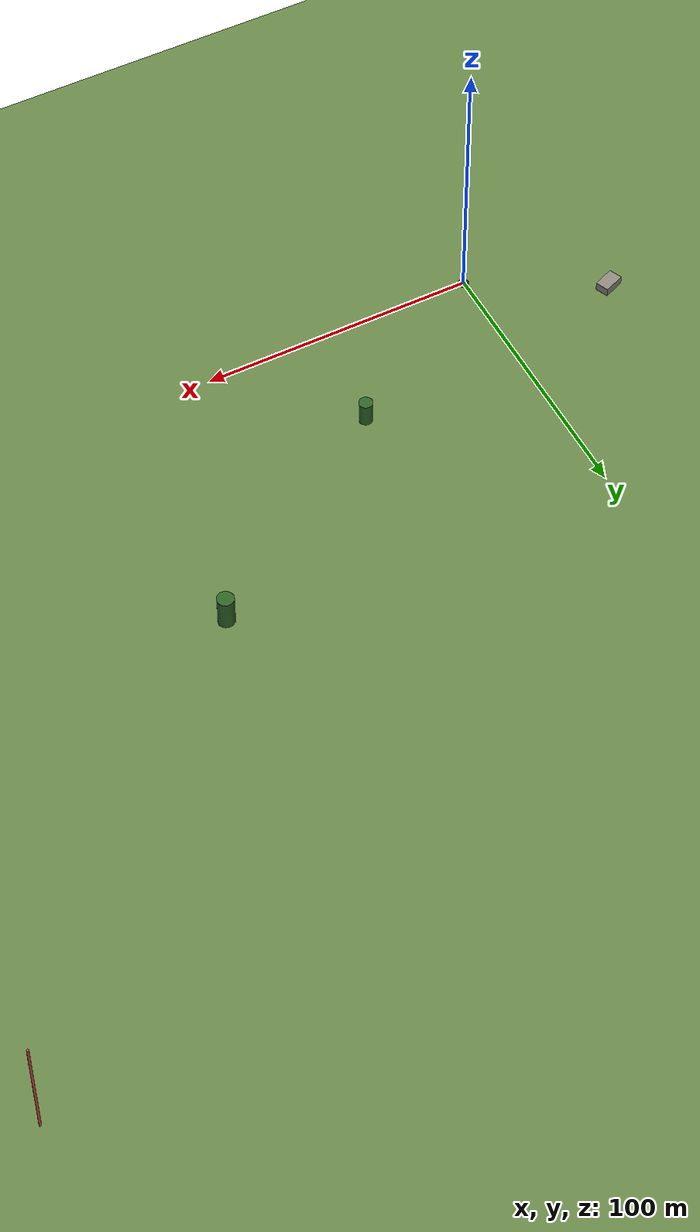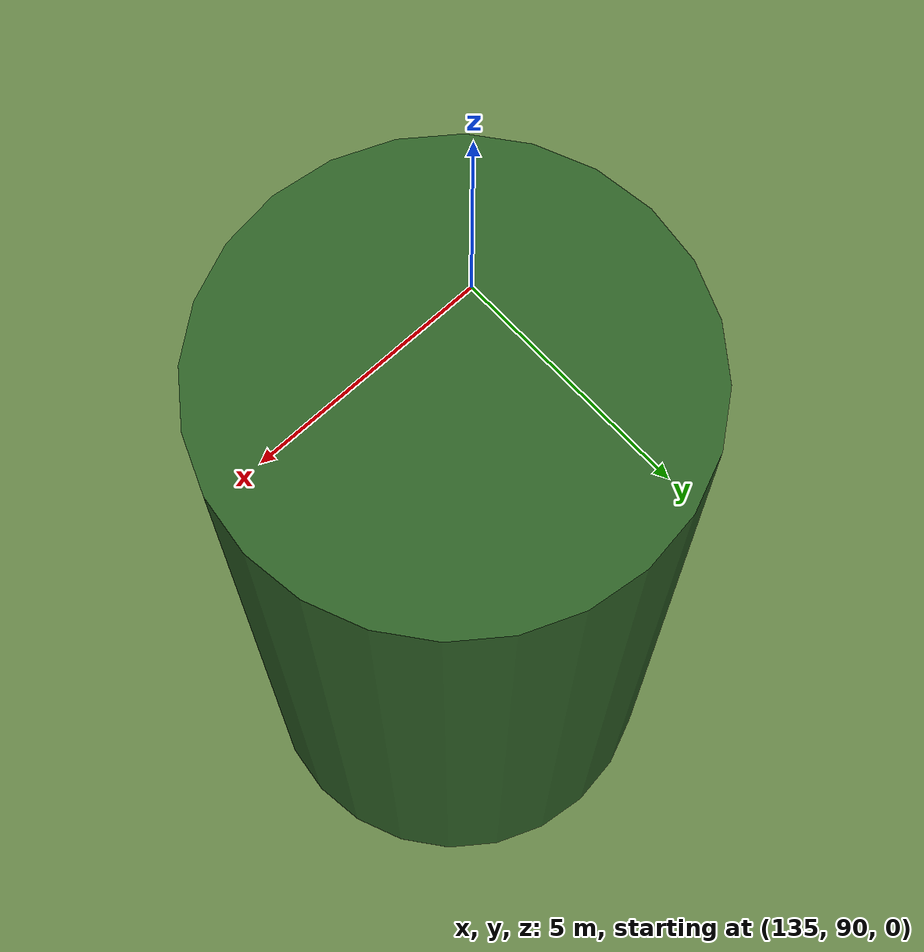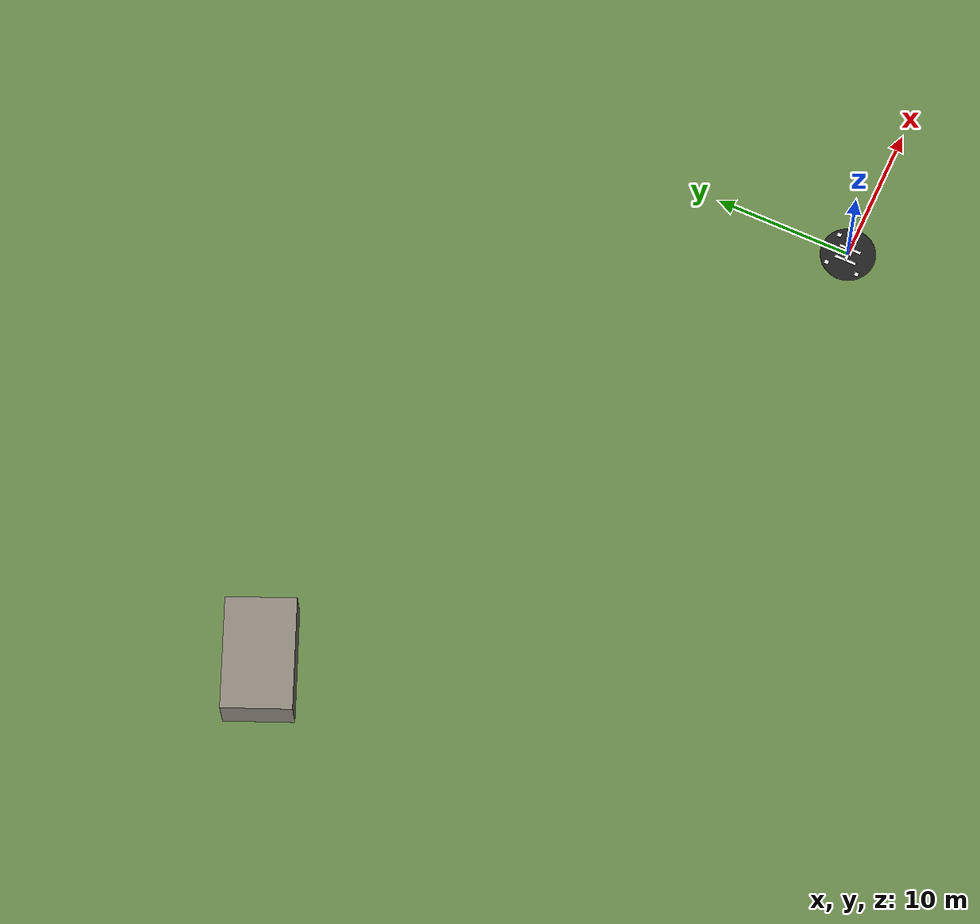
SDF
<?xml version="1.0" ?>
<sdf version="1.9">
  <world name="survey_field">

    <physics name="1ms" type="ignored">
      <max_step_size>0.001</max_step_size>
      <real_time_factor>1.0</real_time_factor>
    </physics>

    <plugin filename="gz-sim-physics-system" name="gz::sim::systems::Physics"/>
    <plugin filename="gz-sim-user-commands-system" name="gz::sim::systems::UserCommands"/>
    <plugin filename="gz-sim-scene-broadcaster-system" name="gz::sim::systems::SceneBroadcaster"/>
    <plugin filename="gz-sim-sensors-system" name="gz::sim::systems::Sensors">
      <render_engine>ogre2</render_engine>
    </plugin>
    <plugin filename="gz-sim-imu-system" name="gz::sim::systems::Imu"/>
    <plugin filename="gz-sim-air-pressure-system" name="gz::sim::systems::AirPressure"/>
    <plugin filename="gz-sim-navsat-system" name="gz::sim::systems::NavSat"/>

    <!-- Must match config/example_mission.yaml and config/example_geofence.yaml. -->
    <spherical_coordinates>
      <surface_model>EARTH_WGS84</surface_model>
      <world_frame_orientation>ENU</world_frame_orientation>
      <latitude_deg>47.397742</latitude_deg>
      <longitude_deg>8.545594</longitude_deg>
      <elevation>488.0</elevation>
      <heading_deg>0</heading_deg>
    </spherical_coordinates>

    <gravity>0 0 -9.8066</gravity>
    <magnetic_field>6.0e-6 2.3e-5 -4.2e-5</magnetic_field>
    <atmosphere type="adiabatic"/>

    <scene>
      <ambient>0.6 0.6 0.6 1</ambient>
      <background>0.6 0.7 0.85 1</background>
      <shadows>true</shadows>
      <grid>false</grid>
    </scene>

    <light type="directional" name="sun">
      <cast_shadows>true</cast_shadows>
      <pose>0 0 200 0 0 0</pose>
      <diffuse>0.9 0.9 0.9 1</diffuse>
      <specular>0.25 0.25 0.25 1</specular>
      <attenuation>
        <range>2000</range>
        <constant>0.9</constant>
        <linear>0.01</linear>
        <quadratic>0.001</quadratic>
      </attenuation>
      <direction>-0.4 0.3 -0.9</direction>
    </light>

    <!-- Light, slightly gusty wind. Tune it up to find out where your
         controller actually falls over. -->
    <wind>
      <linear_velocity>2.5 1.0 0</linear_velocity>
    </wind>

    <model name="ground_plane">
      <static>true</static>
      <link name="link">
        <collision name="collision">
          <geometry>
            <plane>
              <normal>0 0 1</normal>
              <size>400 400</size>
            </plane>
          </geometry>
          <surface>
            <friction>
              <ode>
                <mu>1.0</mu>
                <mu2>1.0</mu2>
              </ode>
            </friction>
          </surface>
        </collision>
        <visual name="visual">
          <geometry>
            <plane>
              <normal>0 0 1</normal>
              <size>400 400</size>
            </plane>
          </geometry>
          <material>
            <ambient>0.35 0.45 0.25 1</ambient>
            <diffuse>0.40 0.52 0.28 1</diffuse>
            <specular>0.05 0.05 0.05 1</specular>
          </material>
        </visual>
      </link>
    </model>

    <!-- Landing pad at the world origin: this is where the vehicle spawns and
         where RTL brings it back. -->
    <include>
      <uri>model://landing_pad</uri>
      <name>home_pad</name>
      <pose>0 0 0 0 0 0</pose>
    </include>

    <!-- Comms mast. Its footprint matches the 'mast_keepout' exclusion zone in
         config/example_geofence.yaml, ~268 m east and ~234 m north of the
         origin. -->
    <model name="comms_mast">
      <static>true</static>
      <pose>268.5 234.4 0 0 0 0</pose>
      <link name="link">
        <collision name="collision">
          <geometry>
            <cylinder>
              <radius>0.4</radius>
              <length>45</length>
            </cylinder>
          </geometry>
          <pose>0 0 22.5 0 0 0</pose>
        </collision>
        <visual name="visual">
          <geometry>
            <cylinder>
              <radius>0.4</radius>
              <length>45</length>
            </cylinder>
          </geometry>
          <pose>0 0 22.5 0 0 0</pose>
          <material>
            <ambient>0.7 0.2 0.2 1</ambient>
            <diffuse>0.8 0.25 0.25 1</diffuse>
          </material>
        </visual>
      </link>
    </model>

    <model name="tree_a">
      <static>true</static>
      <pose>60 40 0 0 0 0</pose>
      <link name="link">
        <collision name="collision">
          <geometry><cylinder><radius>2.5</radius><length>9</length></cylinder></geometry>
          <pose>0 0 4.5 0 0 0</pose>
        </collision>
        <visual name="visual">
          <geometry><cylinder><radius>2.5</radius><length>9</length></cylinder></geometry>
          <pose>0 0 4.5 0 0 0</pose>
          <material>
            <ambient>0.15 0.30 0.12 1</ambient>
            <diffuse>0.18 0.38 0.15 1</diffuse>
          </material>
        </visual>
      </link>
    </model>

    <model name="tree_b">
      <static>true</static>
      <pose>140 95 0 0 0 0</pose>
      <link name="link">
        <collision name="collision">
          <geometry><cylinder><radius>3.0</radius><length>12</length></cylinder></geometry>
          <pose>0 0 6 0 0 0</pose>
        </collision>
        <visual name="visual">
          <geometry><cylinder><radius>3.0</radius><length>12</length></cylinder></geometry>
          <pose>0 0 6 0 0 0</pose>
          <material>
            <ambient>0.15 0.30 0.12 1</ambient>
            <diffuse>0.18 0.38 0.15 1</diffuse>
          </material>
        </visual>
      </link>
    </model>

    <model name="shed">
      <static>true</static>
      <pose>-45 25 0 0 0 0.4</pose>
      <link name="link">
        <collision name="collision">
          <geometry><box><size>8 5 3.2</size></box></geometry>
          <pose>0 0 1.6 0 0 0</pose>
        </collision>
        <visual name="visual">
          <geometry><box><size>8 5 3.2</size></box></geometry>
          <pose>0 0 1.6 0 0 0</pose>
          <material>
            <ambient>0.45 0.42 0.38 1</ambient>
            <diffuse>0.55 0.52 0.48 1</diffuse>
          </material>
        </visual>
      </link>
    </model>

  </world>
</sdf>

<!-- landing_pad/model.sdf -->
<sdf version="1.9">
  <model name="landing_pad">
    <static>true</static>

    <link name="pad">
      <collision name="collision">
        <pose>0 0 0.01 0 0 0</pose>
        <geometry>
          <cylinder>
            <radius>2.0</radius>
            <length>0.02</length>
          </cylinder>
        </geometry>
        <surface>
          <friction>
            <ode>
              <mu>1.2</mu>
              <mu2>1.2</mu2>
            </ode>
          </friction>
          <contact>
            <ode>
              <kp>1e6</kp>
              <kd>100</kd>
            </ode>
          </contact>
        </surface>
      </collision>

      <visual name="deck">
        <pose>0 0 0.01 0 0 0</pose>
        <geometry>
          <cylinder>
            <radius>2.0</radius>
            <length>0.02</length>
          </cylinder>
        </geometry>
        <material>
          <ambient>0.08 0.08 0.08 1</ambient>
          <diffuse>0.12 0.12 0.12 1</diffuse>
          <specular>0.02 0.02 0.02 1</specular>
        </material>
      </visual>

      <!-- White ring, drawn as a slightly larger, slightly lower disc so it
           reads as an outline from above without needing a texture. -->
      <visual name="ring">
        <pose>0 0 0.005 0 0 0</pose>
        <geometry>
          <cylinder>
            <radius>2.0</radius>
            <length>0.012</length>
          </cylinder>
        </geometry>
        <material>
          <ambient>0.85 0.85 0.85 1</ambient>
          <diffuse>0.95 0.95 0.95 1</diffuse>
          <emissive>0.25 0.25 0.25 1</emissive>
        </material>
      </visual>

      <!-- H marking: two uprights and a crossbar. -->
      <visual name="h_left">
        <pose>-0.45 0 0.022 0 0 0</pose>
        <geometry><box><size>0.22 1.60 0.004</size></box></geometry>
        <material>
          <ambient>0.9 0.9 0.9 1</ambient>
          <diffuse>1.0 1.0 1.0 1</diffuse>
          <emissive>0.35 0.35 0.35 1</emissive>
        </material>
      </visual>
      <visual name="h_right">
        <pose>0.45 0 0.022 0 0 0</pose>
        <geometry><box><size>0.22 1.60 0.004</size></box></geometry>
        <material>
          <ambient>0.9 0.9 0.9 1</ambient>
          <diffuse>1.0 1.0 1.0 1</diffuse>
          <emissive>0.35 0.35 0.35 1</emissive>
        </material>
      </visual>
      <visual name="h_bar">
        <pose>0 0 0.022 0 0 0</pose>
        <geometry><box><size>0.90 0.22 0.004</size></box></geometry>
        <material>
          <ambient>0.9 0.9 0.9 1</ambient>
          <diffuse>1.0 1.0 1.0 1</diffuse>
          <emissive>0.35 0.35 0.35 1</emissive>
        </material>
      </visual>

      <visual name="fiducial_ne">
        <pose>1.15 1.15 0.022 0 0 0</pose>
        <geometry><box><size>0.30 0.30 0.004</size></box></geometry>
        <material>
          <ambient>0.9 0.9 0.9 1</ambient>
          <diffuse>1.0 1.0 1.0 1</diffuse>
          <emissive>0.35 0.35 0.35 1</emissive>
        </material>
      </visual>
      <visual name="fiducial_nw">
        <pose>-1.15 1.15 0.022 0 0 0</pose>
        <geometry><box><size>0.30 0.30 0.004</size></box></geometry>
        <material>
          <ambient>0.9 0.9 0.9 1</ambient>
          <diffuse>1.0 1.0 1.0 1</diffuse>
          <emissive>0.35 0.35 0.35 1</emissive>
        </material>
      </visual>
      <visual name="fiducial_sw">
        <pose>-1.15 -1.15 0.022 0 0 0</pose>
        <geometry><box><size>0.30 0.30 0.004</size></box></geometry>
        <material>
          <ambient>0.9 0.9 0.9 1</ambient>
          <diffuse>1.0 1.0 1.0 1</diffuse>
          <emissive>0.35 0.35 0.35 1</emissive>
        </material>
      </visual>
      <!-- The south-east corner is deliberately left empty. Three fiducials in
           an L give a unique orientation; four identical ones do not. -->
    </link>
  </model>
</sdf>
